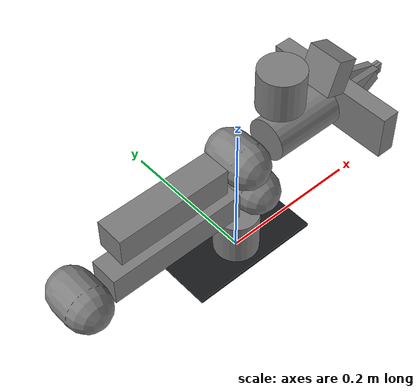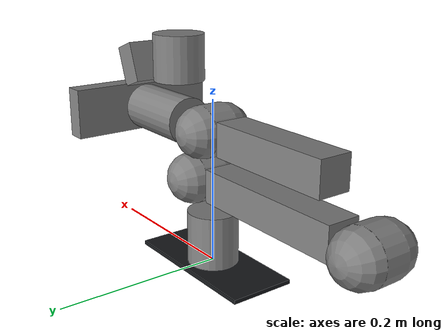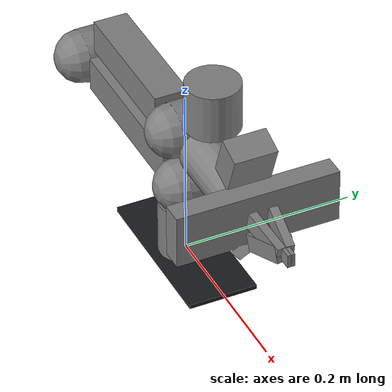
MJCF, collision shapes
<mujoco model="wxai_follower_realistic">
  <compiler angle="radian" meshdir="assets" texturedir="assets/realistic"
            autolimits="true"/>

  <option integrator="implicitfast"/>

  <default>
    <default class="visual">
      <geom type="mesh" group="2" contype="0" conaffinity="0"
            material="structural_black"/>
    </default>
    <default class="collision">
      <geom type="cylinder" group="3" mass="0" density="0"/>
    </default>
  </default>

  <asset>
    <material name="structural_black" rgba="0.095 0.105 0.115 1"
              specular="0.48" shininess="0.30"
              metallic="0.72" roughness="0.44"/>
    <material name="servo_black" rgba="0.052 0.058 0.066 1"
              specular="0.70" shininess="0.52"
              metallic="0.82" roughness="0.29"/>
    <material name="printed_black" rgba="0.082 0.088 0.094 1"
              specular="0.16" shininess="0.10"
              metallic="0.0" roughness="0.68"/>
    <material name="silicone_black" rgba="0.042 0.047 0.052 1"
              specular="0.04" shininess="0.03"
              metallic="0.0" roughness="0.88"/>
    <material name="satin_aluminum" rgba="0.52 0.55 0.58 1"
              specular="0.82" shininess="0.58"
              metallic="0.96" roughness="0.25"/>
    <!-- The Trossen's D405 housing is black, not bare aluminium. Keeps the
         camera's specular response -- an anodised body is glossier than the
         printed mount -- with the mount's colour. -->
    <material name="camera_black" rgba="0.082 0.088 0.094 1"
              specular="0.70" shininess="0.44"
              metallic="0.90" roughness="0.34"/>
    <material name="camera_glass" rgba="0.006 0.010 0.014 1"
              specular="0.96" shininess="0.92" reflectance="0.12"
              metallic="0.0" roughness="0.06"/>
    <material name="lens_glass" rgba="0.012 0.030 0.038 1"
              specular="0.98" shininess="0.96" reflectance="0.18"
              metallic="0.0" roughness="0.04"/>

    <texture name="trossen_logo_texture" type="2d" file="trossen_logo.png"/>
    <material name="trossen_logo" texture="trossen_logo_texture"
              texuniform="false" rgba="1 1 1 1"
              specular="0.10" shininess="0.06"
              metallic="0.0" roughness="0.72"/>

    <mesh name="base_link" file="base_link.stl"/>
    <mesh name="link_1" file="link_1.stl"/>
    <mesh name="link_2" file="link_2.stl"/>
    <mesh name="link_3" file="link_3.stl"/>
    <mesh name="link_4" file="link_4.stl"/>
    <mesh name="link_5" file="link_5.stl"/>
    <mesh name="link_6_body" file="realistic/link_6_body.stl"/>
    <mesh name="link_6_rail" file="realistic/link_6_rail.stl"/>
    <mesh name="carriage_right_black"
          file="realistic/carriage_right_black.stl"/>
    <mesh name="carriage_right_slider"
          file="realistic/carriage_right_slider.stl"/>
    <mesh name="carriage_left_black"
          file="realistic/carriage_left_black.stl"/>
    <mesh name="carriage_left_slider"
          file="realistic/carriage_left_slider.stl"/>
    <mesh name="camera_mount_d405" file="camera_mount_d405.stl"/>
    <mesh name="d405" file="d405.stl" scale="0.001 0.001 0.001"/>
    <mesh name="gripper_left_shell"
          file="realistic/gripper_left_shell.stl"/>
    <mesh name="gripper_left_pad"
          file="realistic/gripper_left_pad.stl"/>
    <mesh name="gripper_right_shell"
          file="realistic/gripper_right_shell.stl"/>
    <mesh name="gripper_right_pad"
          file="realistic/gripper_right_pad.stl"/>
    <mesh name="trossen_logo_plate"
          file="realistic/trossen_logo_plate.obj"/>
  </asset>

  <worldbody>
    <body name="base_link" pos="0 0 0" gravcomp="1">
      <camera name="external_cam" pos="0.812099 -0.021484 0.468208"
              quat="0.662909 0.265531 0.247583 0.654788"
              mode="fixed" fovy="54.284"/>
      <inertial pos="-0.00014175 -5.228e-05 0.03175177"
                quat="0.503748 -0.507380 -0.494230 -0.494510"
                mass="0.45969858"
                diaginertia="0.000213926 0.000416701 0.000448963"/>
      <geom name="mount_plate" class="visual" type="box"
            size="0.095 0.04 0.0025" pos="0 0 -0.0025"/>
      <geom name="base_visual" class="visual" mesh="base_link"
            material="servo_black"/>
      <geom name="base_collision" class="collision" type="cylinder"
            size="0.031 0.0325" pos="0 0 0.0325" quat="1 0 0 0"/>
      <body name="link_1" pos="0 0 0.05725" gravcomp="1">
        <inertial pos="-0.00011075 0.00171176 0.0204459"
                  quat="0.313955 0.305238 -0.643575 0.627752"
                  mass="0.152704"
                  diaginertia="0.000203432 0.000173907 8.3521e-05"/>
        <joint name="joint_0" pos="0 0 0" axis="0 0 1"
               range="-3.05433 3.05433" armature="0.032" frictionloss="0.1"
               actuatorgravcomp="true"/>
        <geom name="link_1_visual" class="visual" mesh="link_1"
              material="structural_black"/>
        <body name="link_2" pos="0.02 0 0.04625" gravcomp="1">
          <inertial pos="-0.131215 -0.00292583 0.00021345"
                    quat="-0.00123582 0.706546 -0.00109575 0.707665"
                    mass="1.15316"
                    diaginertia="0.0179449 0.0173612 0.00102628"/>
          <joint name="joint_1" pos="0 0 0" axis="0 1 0"
                 range="0 3.14159" armature="0.032" frictionloss="0.1"
                 actuatorgravcomp="true"/>
          <geom name="link_2_visual" class="visual" mesh="link_2"
                material="structural_black"/>
          <geom name="link_2_joint_collision" class="collision" type="capsule"
                size="0.031 0.015" pos="0 0 0" quat="1 1 0 0"/>
          <geom name="link_2_collision" class="collision" type="box"
                size="0.0975 0.02 0.02" pos="-0.131 0 0" quat="1 0 0 0"/>
          <body name="link_3" pos="-0.264 0 0" gravcomp="1">
            <inertial pos="0.180836 -0.0009409 0.0555494"
                      quat="0.0103901 0.669684 -0.0033175 0.742566"
                      mass="0.686666"
                      diaginertia="0.00566898 0.00547578 0.00059316"/>
            <joint name="joint_2" pos="0 0 0" axis="0 -1 0"
                   range="0 2.35619" armature="0.032" frictionloss="0.1"
                   actuatorgravcomp="true"/>
            <geom name="link_3_visual" class="visual" mesh="link_3"
                  material="structural_black"/>
            <geom name="appearance_logo_positive" class="visual"
                  mesh="trossen_logo_plate"
                  pos="0.134559214 0.019394999 0.059999999"
                  material="trossen_logo"/>
            <geom name="appearance_logo_negative" class="visual"
                  mesh="trossen_logo_plate"
                  pos="0.134559214 -0.019394999 0.059999999"
                  material="trossen_logo"/>
            <geom name="link_3_joint_collision" class="collision"
                  type="capsule" size="0.031 0.015" pos="0 0 0"
                  quat="1 1 0 0"/>
            <geom name="link_3_collision" class="collision" type="box"
                  size="0.08 0.02 0.02" pos="0.13 0 0.06"
                  quat="1 0 0 0"/>
            <body name="link_4" pos="0.245 0 0.06" gravcomp="1">
              <inertial pos="0.0579784 0.00027145 0.0588445"
                        quat="0.948688 0.0346237 0.307828 0.0635164"
                        mass="0.457899"
                        diaginertia="0.000670827 0.000661455 0.000288648"/>
              <joint name="joint_3" pos="0 0 0" axis="0 -1 0"
                     range="-1.5708 1.5708" armature="0.0018"
                     frictionloss="0.1" actuatorgravcomp="true"/>
              <geom name="link_4_visual" class="visual" mesh="link_4"
                    material="servo_black"/>
              <geom name="link_4_joint_collision" class="collision"
                    type="capsule" size="0.031 0.015" pos="0 0 0"
                    quat="1 1 0 0"/>
              <body name="link_5" pos="0.06775 0 0.0455" gravcomp="1">
                <inertial pos="0.00412447 -1.138e-05 -0.0428318"
                          quat="0.496144 0.502128 0.503595 0.498098"
                          mass="0.366939"
                          diaginertia="0.000320622 0.00026751 0.000189108"/>
                <joint name="joint_4" pos="0 0 0" axis="0 0 -1"
                       range="-1.5708 1.5708" armature="0.0018"
                       frictionloss="0.1" actuatorgravcomp="true"/>
                <geom name="link_5_visual" class="visual" mesh="link_5"
                      material="servo_black"/>
                <geom name="link_5_collision" class="collision"
                      type="cylinder" size="0.031 0.028" pos="0 0 0.03"
                      quat="1 0 0 0"/>
                <body name="link_6" pos="0.02895 0 -0.0455" gravcomp="1">
                  <inertial pos="0.046841 0.00145133 0.00895674"
                            quat="0.275854 0.291255 -0.691957 0.600225"
                            mass="0.671874"
                            diaginertia="0.00118316 0.00110863 0.00078309"/>
                  <joint name="joint_5" pos="0 0 0" axis="1 0 0"
                         range="-3.14159 3.14159" armature="0.0018"
                         frictionloss="0.1" actuatorgravcomp="true"/>
                  <geom name="link_6_visual" class="visual" mesh="link_6_body"
                        material="structural_black"/>
                  <geom name="appearance_link_6_rail" class="visual"
                        mesh="link_6_rail" material="satin_aluminum"/>
                  <geom name="link_6_joint_collision" class="collision"
                        type="cylinder" size="0.029 0.05" pos="0 0 0"
                        quat="1 0 1 0"/>
                  <geom name="link_6_collision" class="collision" type="box"
                        size="0.0125 0.094 0.031" pos="0.0685 0 0"
                        quat="1 0 0 0"/>
                  <site name="ee_site" pos="0.156 0 0" size="0.001"/>

                  <geom name="camera_mount_visual" class="visual"
                        pos="0.012 0 0" quat="1 0 0 0"
                        mesh="camera_mount_d405"
                        material="printed_black"/>

                  <!-- Collision and calibrated camera frames are unchanged. -->
                  <geom name="camera_collision" class="collision" group="4"
                        type="box" size="0.0155 0.025 0.025"
                        pos="0.0513206 0 0.0569399"
                        quat="0.984808 0 0.173648 0"/>

                  <!--
                    Official D405 mesh aligned to the existing proxy's center.
                    Its STL +Z face is the optical front after the URDF rotation.
                  -->
                  <!-- Group 1, the camera body: rendered by every camera except the
                       one mounted inside it. See CAMERA_HOUSING_GROUP. -->
                  <geom name="camera_visual" class="visual" group="1"
                        pos="0.0622210 0 0.0529725"
                        quat="0.405580 0.579228 0.579228 0.405580"
                        mesh="d405" material="camera_black"/>
                  <geom name="appearance_camera_face" class="visual" group="1" type="box"
                        size="0.00035 0.0172 0.0172"
                        pos="0.0625499 0 0.0528528"
                        quat="0.984808 0 0.173648 0"
                        material="camera_glass"/>
                  <geom name="appearance_camera_lens_left" class="visual" group="1"
                        type="cylinder" size="0.00355 0.00030"
                        pos="0.0629258 0.009 0.0527159"
                        quat="0.573576 0 0.819152 0"
                        material="satin_aluminum"/>
                  <geom name="appearance_camera_lens_right" class="visual" group="1"
                        type="cylinder" size="0.00355 0.00030"
                        pos="0.0629258 -0.009 0.0527159"
                        quat="0.573576 0 0.819152 0"
                        material="satin_aluminum"/>
                  <geom name="appearance_camera_optic_left" class="visual" group="1"
                        type="cylinder" size="0.00165 0.00016"
                        pos="0.0632077 0.009 0.0526133"
                        quat="0.573576 0 0.819152 0"
                        material="lens_glass"/>
                  <geom name="appearance_camera_optic_right" class="visual" group="1"
                        type="cylinder" size="0.00165 0.00016"
                        pos="0.0632077 -0.009 0.0526133"
                        quat="0.573576 0 0.819152 0"
                        material="lens_glass"/>

                  <site name="camera_color_frame" pos="0.05864 0.009 0.05427"
                        quat="0.9848078 0 0.1736482 0" size="0.005"/>
                  <camera name="cam" pos="0.05864 0.009 0.05427"
                          quat="0.5793 0.4056 -0.4056 -0.5793"
                          mode="fixed" fovy="54.489"/>

                  <body name="carriage_right" pos="0.0865 -0.023 0"
                        gravcomp="1">
                    <inertial pos="0.00169015 0.00592793 0.00201817"
                              quat="-0.370973 0.740886 -0.0847721 0.553427"
                              mass="0.081271"
                              diaginertia="4.29565e-05 3.87081e-05 2.21528e-05"/>
                    <joint name="right_carriage_joint" pos="0 0 0"
                           axis="0 -1 0" type="slide" range="0 0.044"
                           armature="0.1" frictionloss="0.1"
                           actuatorgravcomp="true"/>
                    <geom name="right_carriage_visual" class="visual"
                          mesh="carriage_right_black"
                          material="structural_black"/>
                    <geom name="appearance_right_carriage_slider" class="visual"
                          mesh="carriage_right_slider"
                          material="satin_aluminum"/>
                    <geom name="right_gripper_visual" class="visual"
                          mesh="gripper_right_shell"
                          material="printed_black"/>
                    <geom name="appearance_right_gripper_pad" class="visual"
                          mesh="gripper_right_pad"
                          material="silicone_black"/>
                    <geom name="right_finger_pad_0_collision" class="collision"
                          type="box" size="0.0275 0.005 0.01"
                          pos="0.0286 0.01436 0.0037"
                          quat="0.99257 -0.00451 0.10246 0.06547"/>
                    <geom name="right_finger_pad_1_collision" class="collision"
                          type="box" size="0.0275 0.005 0.01"
                          pos="0.0285 0.01429 -0.00973"
                          quat="0.98344 0.0133 -0.16893 0.06427"/>
                    <geom name="right_gripper_shell_collision" class="collision"
                          type="box" size="0.01282 0.00020 0.00669"
                          pos="0.00120 0.00194 -0.02902"
                          quat="0.33806 0.42141 0.65242 0.53148"/>
                    <geom name="right_finger_pad_2_collision" class="collision"
                          type="box" size="0.00732 0.00214 0.00767"
                          pos="0.0622 0.02083 -0.00105"
                          quat="1 0 0 0"/>
                  </body>
                  <body name="carriage_left" pos="0.0865 0.023 0"
                        gravcomp="1">
                    <inertial pos="0.00169017 -0.00592796 -0.00365701"
                              quat="-0.0382691 0.628022 -0.255101 0.734198"
                              mass="0.081271"
                              diaginertia="4.21112e-05 3.61943e-05 2.40003e-05"/>
                    <joint name="left_carriage_joint" pos="0 0 0"
                           axis="0 1 0" type="slide" range="0 0.044"
                           armature="0.1" frictionloss="0.1"
                           actuatorgravcomp="true"/>
                    <geom name="left_carriage_visual" class="visual"
                          mesh="carriage_left_black"
                          material="structural_black"/>
                    <geom name="appearance_left_carriage_slider" class="visual"
                          mesh="carriage_left_slider"
                          material="satin_aluminum"/>
                    <geom name="left_gripper_visual" class="visual"
                          mesh="gripper_left_shell"
                          material="printed_black"/>
                    <geom name="appearance_left_gripper_pad" class="visual"
                          mesh="gripper_left_pad"
                          material="silicone_black"/>
                    <geom name="left_finger_pad_0_collision" class="collision"
                          type="box" size="0.0275 0.005 0.01"
                          pos="0.0286 -0.01436 0.0037"
                          quat="0.99257 0.00451 0.10246 -0.06547"/>
                    <geom name="left_finger_pad_1_collision" class="collision"
                          type="box" size="0.0275 0.005 0.01"
                          pos="0.0285 -0.01429 -0.00973"
                          quat="0.98344 -0.0133 -0.16893 -0.06427"/>
                    <geom name="left_gripper_shell_collision" class="collision"
                          type="box" size="0.01285 0.00020 0.00669"
                          pos="0.00121 -0.00192 -0.02902"
                          quat="0.53144 0.65246 0.42143 0.33803"/>
                    <geom name="left_finger_pad_2_collision" class="collision"
                          type="box" size="0.00732 0.00214 0.00767"
                          pos="0.0622 -0.02083 -0.00105"
                          quat="1 0 0 0"/>
                  </body>
                </body>
              </body>
            </body>
          </body>
        </body>
      </body>
    </body>
  </worldbody>

  <equality>
    <joint joint1="right_carriage_joint" joint2="left_carriage_joint"
           polycoef="0 1 0 0 0"/>
  </equality>

  <actuator>
    <position name="joint_0" joint="joint_0" kp="200" kv="10"
              ctrlrange="-3.05433 3.05433" forcerange="-27 27"/>
    <position name="joint_1" joint="joint_1" kp="200" kv="10"
              ctrlrange="0 3.14159" forcerange="-27 27"/>
    <position name="joint_2" joint="joint_2" kp="200" kv="10"
              ctrlrange="0 2.35619" forcerange="-27 27"/>
    <position name="joint_3" joint="joint_3" kp="100" kv="5"
              ctrlrange="-1.5708 1.5708" forcerange="-7 7"/>
    <position name="joint_4" joint="joint_4" kp="50" kv="5"
              ctrlrange="-1.5708 1.5708" forcerange="-7 7"/>
    <position name="joint_5" joint="joint_5" kp="50" kv="5"
              ctrlrange="-3.14159 3.14159" forcerange="-7 7"/>
    <position name="left_gripper" joint="left_carriage_joint" kp="1000" kv="50"
              ctrlrange="0 0.044" forcerange="-400 400"/>
  </actuator>
</mujoco>
